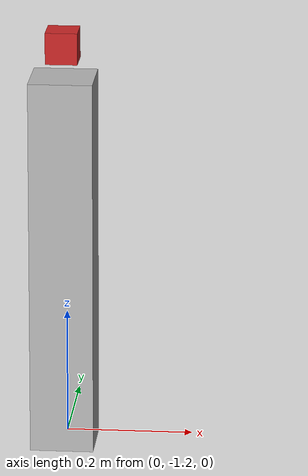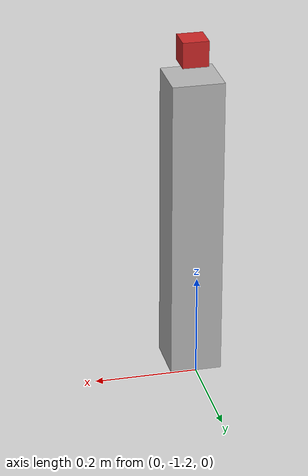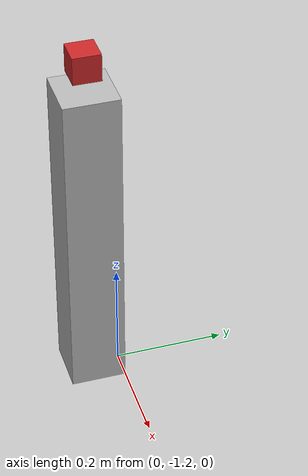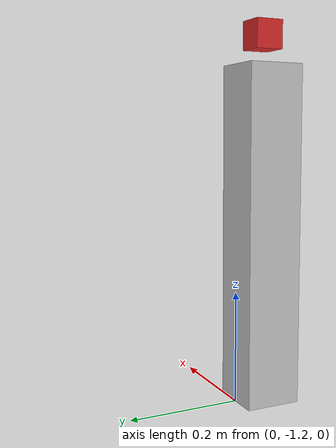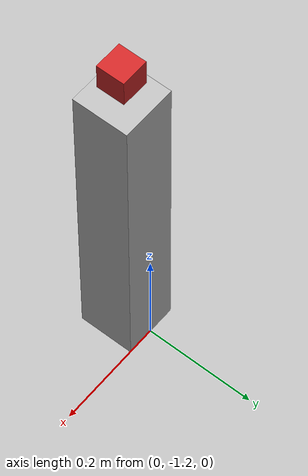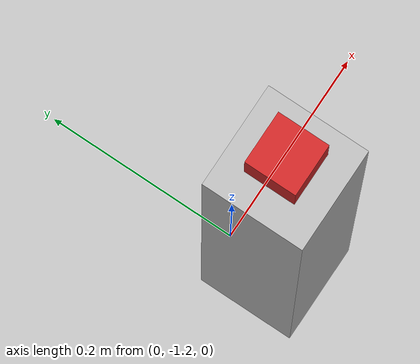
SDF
<?xml version='1.0'?>
<sdf version="1.4">
  <model name="camera_y">
    <pose>0 -1.25 0.3 0 0 1.570796327</pose>
    <static>true</static>
    <link name="stand-link">
      <collision name="stand-collision">
        <geometry>
          <box>
            <size>0.1 0.1 0.6</size>
          </box>
        </geometry>
      </collision>

      <visual name="stand-visual">
        <geometry>
          <box>
            <size>0.1 0.1 0.6</size>
          </box>
        </geometry>
      </visual>
    </link>
    <link name="camera-link">
      <pose>0 0 0.35 0 0 0</pose>
      <collision name="camera-collision">
        <geometry>
          <box>
            <size>0.05 0.05 0.05</size>
          </box>
        </geometry>
      </collision>

      <visual name="camera-visual">
        <geometry>
          <box>
            <size>0.05 0.05 0.05</size>
          </box>
        </geometry>
        <material>
          <script>
            <uri>file://media/materials/scripts/gazebo.material</uri>
            <name>Gazebo/Red</name>
          </script>
        </material>
      </visual>

      <sensor name='camera-sensor' type='camera'>
        <camera>
          <horizontal_fov>1.047</horizontal_fov>
          <image>
            <width>1920</width>
            <height>1080</height>
          </image>
          <clip>
            <near>0.2</near>
            <far>300</far>
          </clip>
        </camera>
        <always_on>1</always_on>
        <update_rate>60</update_rate>

        <plugin name="camera-y-controller" filename="libgazebo_ros_camera.so">
          <robotNamespace>/camera</robotNamespace>
          <alwaysOn>true</alwaysOn>
          <updateRate>60.0</updateRate>
          <cameraName>camera_y</cameraName>
          <imageTopicName>image_raw</imageTopicName>
          <cameraInfoTopicName>camera_info</cameraInfoTopicName>
          <frameName>camera_y_frame</frameName>
        </plugin>

      </sensor>
    </link>

  </model>
</sdf>
